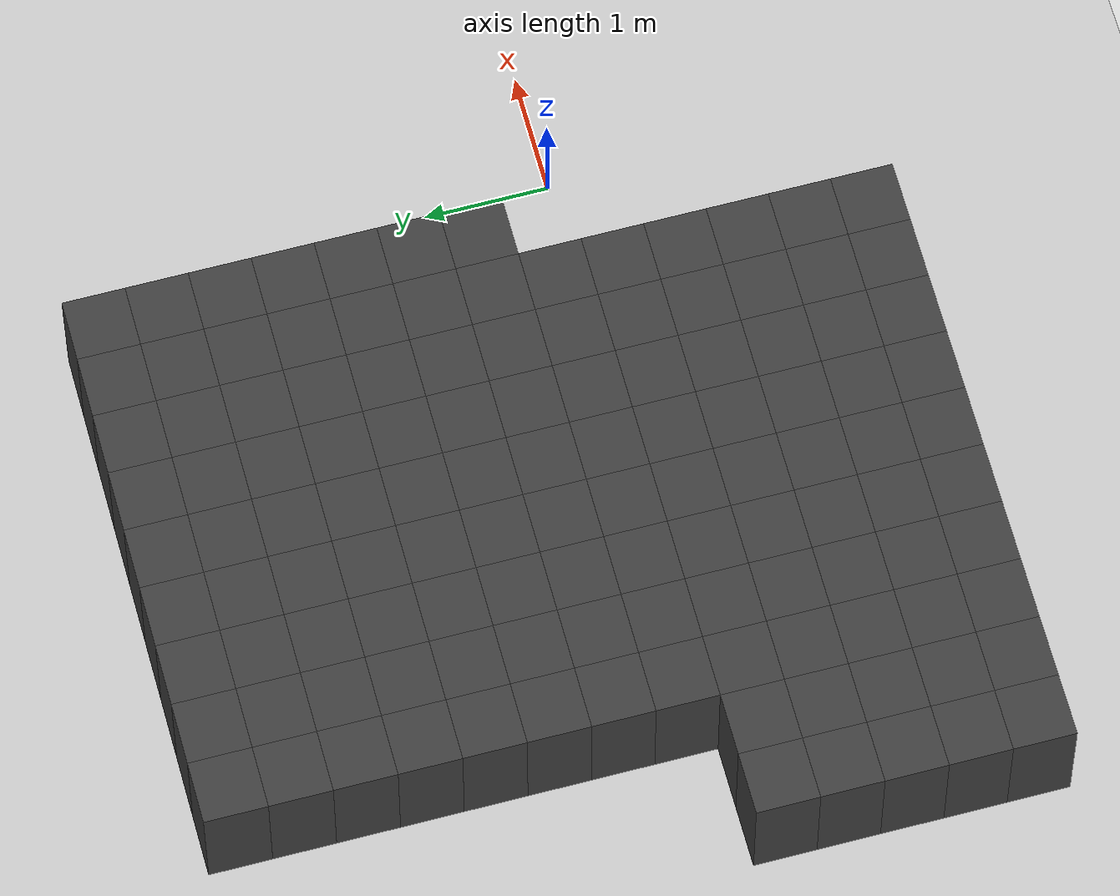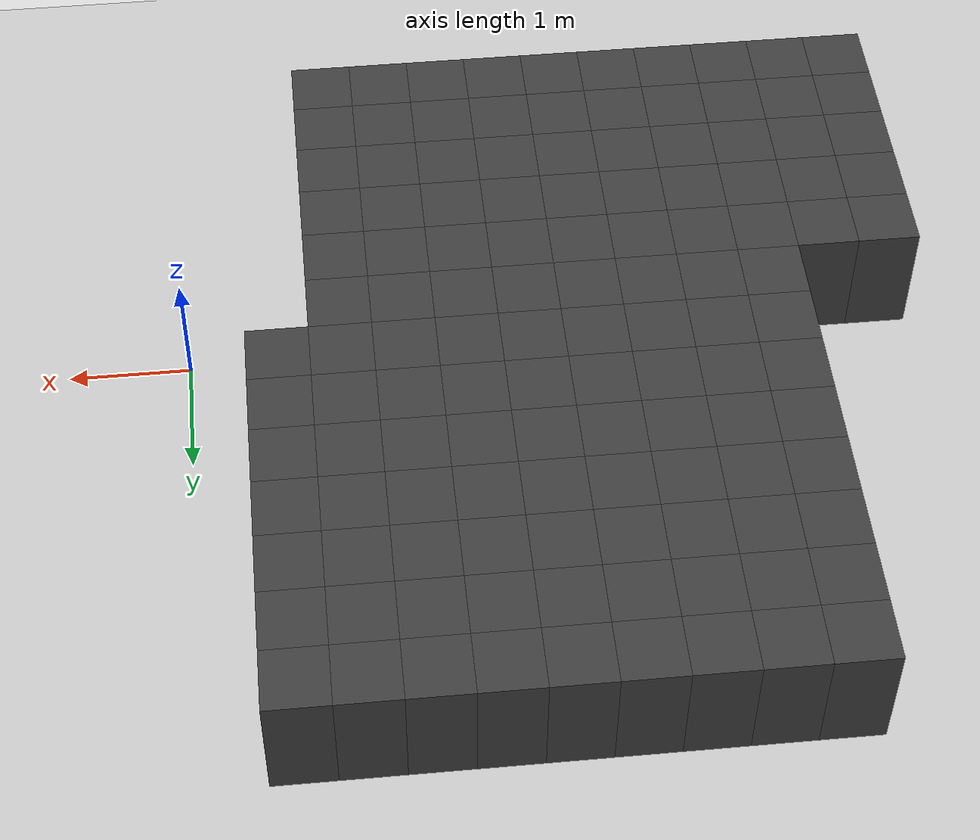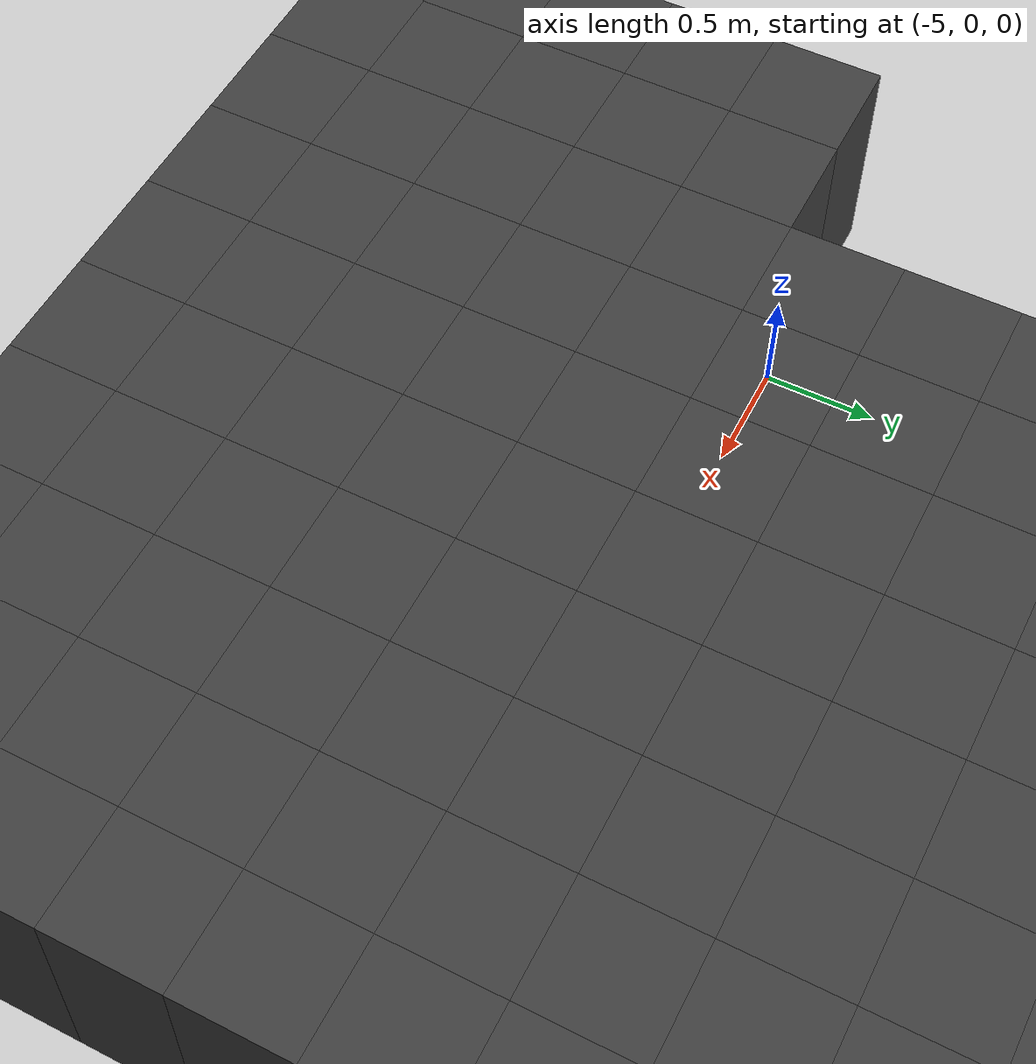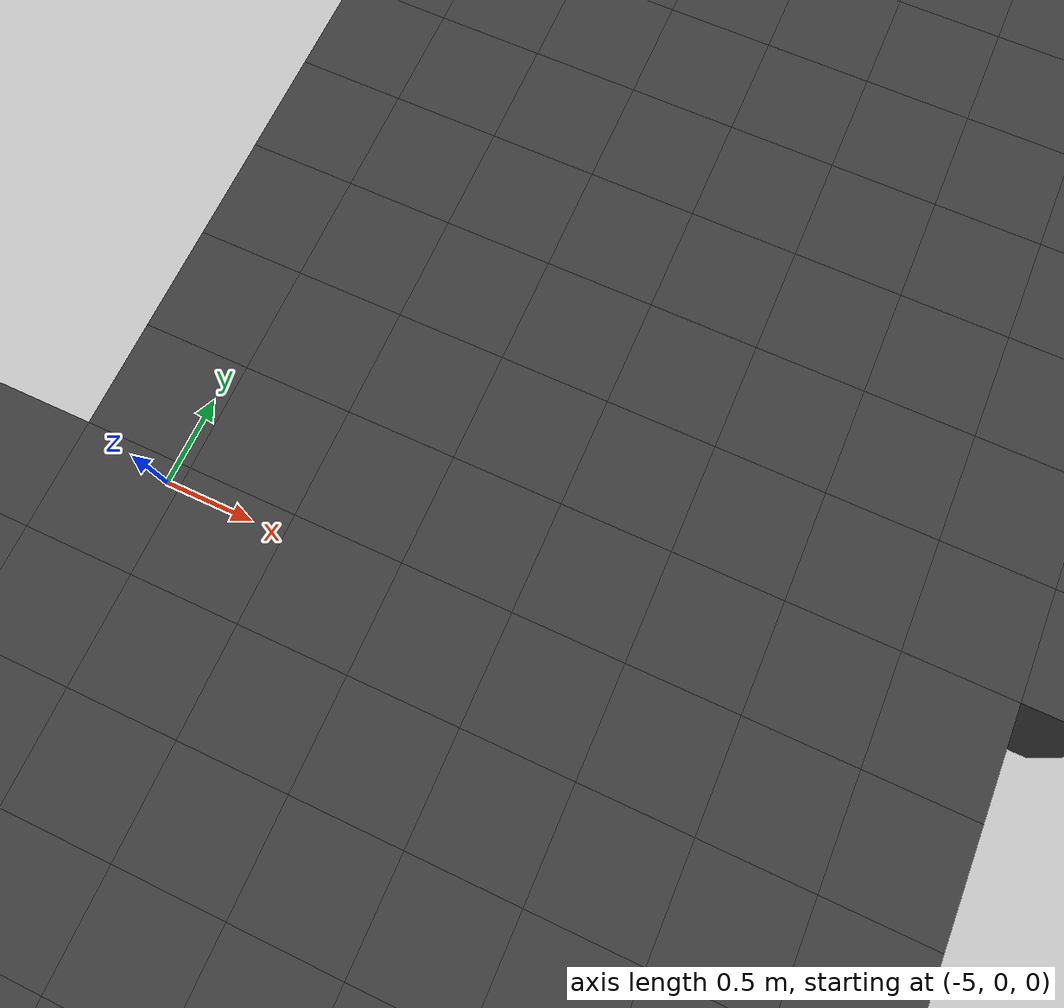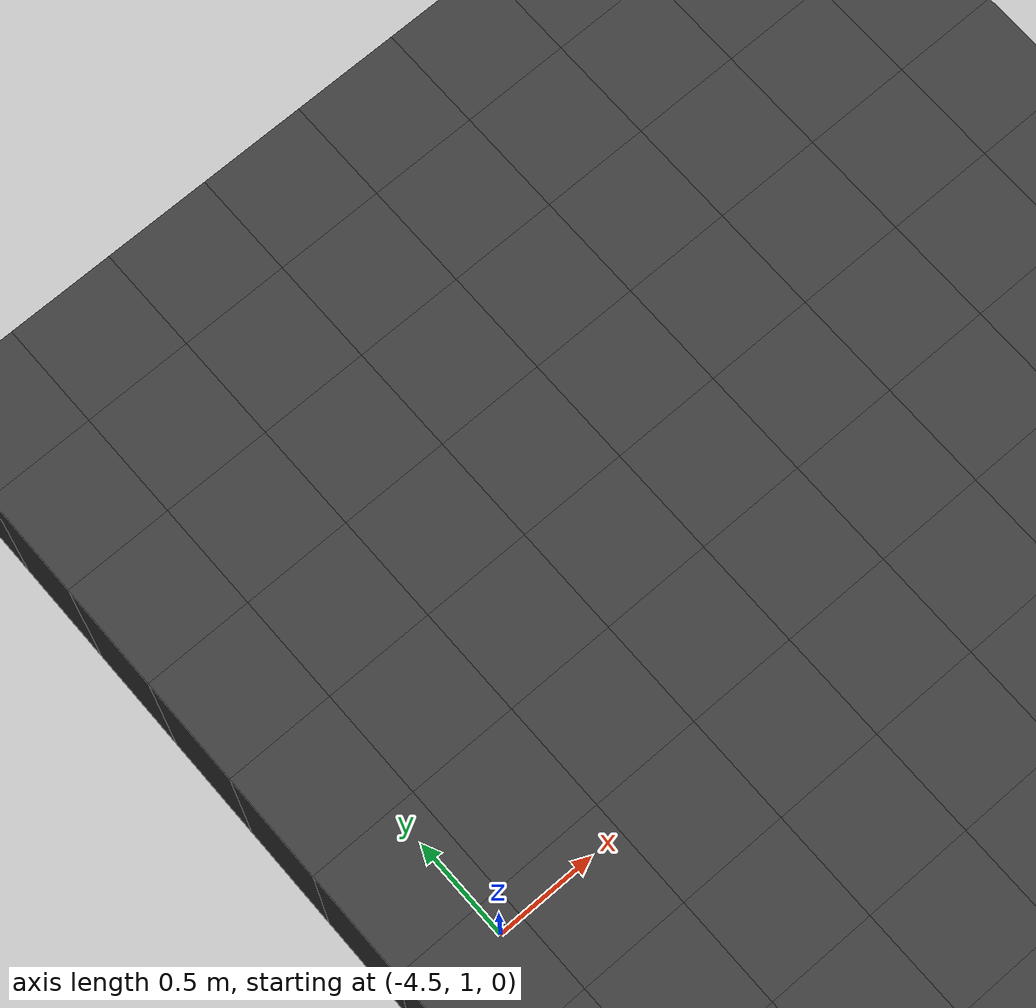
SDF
<sdf version="1.7">
 <world name="map_14706">
  <model name="ground_plane">
   <static>true</static>
   <link name="link">
    <collision name="collision">
     <geometry><plane><normal>0 0 1</normal><size>200 200</size></plane></geometry>
    </collision>
    <visual name="visual">
     <geometry><plane><normal>0 0 1</normal><size>200 200</size></plane></geometry>
     <material><ambient>0.8 0.8 0.8 1</ambient><diffuse>0.8 0.8 0.8 1</diffuse></material>
    </visual>
   </link>
  </model>
  <model name="maze_environment">
   <static>true</static>
   <link name="wall_547">
    <pose>-4.750 3.750 0.500 0 0 0</pose>
    <collision name="col"><geometry><box><size>0.5 0.5 1.0</size></box></geometry></collision>
    <visual name="vis">
     <geometry><box><size>0.5 0.5 1.0</size></box></geometry>
     <material><ambient>0.15 0.15 0.15 1</ambient><diffuse>0.25 0.25 0.25 1</diffuse></material>
    </visual>
   </link>
   <link name="wall_548">
    <pose>-4.250 3.750 0.500 0 0 0</pose>
    <collision name="col"><geometry><box><size>0.5 0.5 1.0</size></box></geometry></collision>
    <visual name="vis">
     <geometry><box><size>0.5 0.5 1.0</size></box></geometry>
     <material><ambient>0.15 0.15 0.15 1</ambient><diffuse>0.25 0.25 0.25 1</diffuse></material>
    </visual>
   </link>
   <link name="wall_549">
    <pose>-3.750 3.750 0.500 0 0 0</pose>
    <collision name="col"><geometry><box><size>0.5 0.5 1.0</size></box></geometry></collision>
    <visual name="vis">
     <geometry><box><size>0.5 0.5 1.0</size></box></geometry>
     <material><ambient>0.15 0.15 0.15 1</ambient><diffuse>0.25 0.25 0.25 1</diffuse></material>
    </visual>
   </link>
   <link name="wall_550">
    <pose>-3.250 3.750 0.500 0 0 0</pose>
    <collision name="col"><geometry><box><size>0.5 0.5 1.0</size></box></geometry></collision>
    <visual name="vis">
     <geometry><box><size>0.5 0.5 1.0</size></box></geometry>
     <material><ambient>0.15 0.15 0.15 1</ambient><diffuse>0.25 0.25 0.25 1</diffuse></material>
    </visual>
   </link>
   <link name="wall_551">
    <pose>-2.750 3.750 0.500 0 0 0</pose>
    <collision name="col"><geometry><box><size>0.5 0.5 1.0</size></box></geometry></collision>
    <visual name="vis">
     <geometry><box><size>0.5 0.5 1.0</size></box></geometry>
     <material><ambient>0.15 0.15 0.15 1</ambient><diffuse>0.25 0.25 0.25 1</diffuse></material>
    </visual>
   </link>
   <link name="wall_552">
    <pose>-2.250 3.750 0.500 0 0 0</pose>
    <collision name="col"><geometry><box><size>0.5 0.5 1.0</size></box></geometry></collision>
    <visual name="vis">
     <geometry><box><size>0.5 0.5 1.0</size></box></geometry>
     <material><ambient>0.15 0.15 0.15 1</ambient><diffuse>0.25 0.25 0.25 1</diffuse></material>
    </visual>
   </link>
   <link name="wall_553">
    <pose>-1.750 3.750 0.500 0 0 0</pose>
    <collision name="col"><geometry><box><size>0.5 0.5 1.0</size></box></geometry></collision>
    <visual name="vis">
     <geometry><box><size>0.5 0.5 1.0</size></box></geometry>
     <material><ambient>0.15 0.15 0.15 1</ambient><diffuse>0.25 0.25 0.25 1</diffuse></material>
    </visual>
   </link>
   <link name="wall_554">
    <pose>-1.250 3.750 0.500 0 0 0</pose>
    <collision name="col"><geometry><box><size>0.5 0.5 1.0</size></box></geometry></collision>
    <visual name="vis">
     <geometry><box><size>0.5 0.5 1.0</size></box></geometry>
     <material><ambient>0.15 0.15 0.15 1</ambient><diffuse>0.25 0.25 0.25 1</diffuse></material>
    </visual>
   </link>
   <link name="wall_555">
    <pose>-0.750 3.750 0.500 0 0 0</pose>
    <collision name="col"><geometry><box><size>0.5 0.5 1.0</size></box></geometry></collision>
    <visual name="vis">
     <geometry><box><size>0.5 0.5 1.0</size></box></geometry>
     <material><ambient>0.15 0.15 0.15 1</ambient><diffuse>0.25 0.25 0.25 1</diffuse></material>
    </visual>
   </link>
   <link name="wall_577">
    <pose>-4.750 3.250 0.500 0 0 0</pose>
    <collision name="col"><geometry><box><size>0.5 0.5 1.0</size></box></geometry></collision>
    <visual name="vis">
     <geometry><box><size>0.5 0.5 1.0</size></box></geometry>
     <material><ambient>0.15 0.15 0.15 1</ambient><diffuse>0.25 0.25 0.25 1</diffuse></material>
    </visual>
   </link>
   <link name="wall_578">
    <pose>-4.250 3.250 0.500 0 0 0</pose>
    <collision name="col"><geometry><box><size>0.5 0.5 1.0</size></box></geometry></collision>
    <visual name="vis">
     <geometry><box><size>0.5 0.5 1.0</size></box></geometry>
     <material><ambient>0.15 0.15 0.15 1</ambient><diffuse>0.25 0.25 0.25 1</diffuse></material>
    </visual>
   </link>
   <link name="wall_579">
    <pose>-3.750 3.250 0.500 0 0 0</pose>
    <collision name="col"><geometry><box><size>0.5 0.5 1.0</size></box></geometry></collision>
    <visual name="vis">
     <geometry><box><size>0.5 0.5 1.0</size></box></geometry>
     <material><ambient>0.15 0.15 0.15 1</ambient><diffuse>0.25 0.25 0.25 1</diffuse></material>
    </visual>
   </link>
   <link name="wall_580">
    <pose>-3.250 3.250 0.500 0 0 0</pose>
    <collision name="col"><geometry><box><size>0.5 0.5 1.0</size></box></geometry></collision>
    <visual name="vis">
     <geometry><box><size>0.5 0.5 1.0</size></box></geometry>
     <material><ambient>0.15 0.15 0.15 1</ambient><diffuse>0.25 0.25 0.25 1</diffuse></material>
    </visual>
   </link>
   <link name="wall_581">
    <pose>-2.750 3.250 0.500 0 0 0</pose>
    <collision name="col"><geometry><box><size>0.5 0.5 1.0</size></box></geometry></collision>
    <visual name="vis">
     <geometry><box><size>0.5 0.5 1.0</size></box></geometry>
     <material><ambient>0.15 0.15 0.15 1</ambient><diffuse>0.25 0.25 0.25 1</diffuse></material>
    </visual>
   </link>
   <link name="wall_582">
    <pose>-2.250 3.250 0.500 0 0 0</pose>
    <collision name="col"><geometry><box><size>0.5 0.5 1.0</size></box></geometry></collision>
    <visual name="vis">
     <geometry><box><size>0.5 0.5 1.0</size></box></geometry>
     <material><ambient>0.15 0.15 0.15 1</ambient><diffuse>0.25 0.25 0.25 1</diffuse></material>
    </visual>
   </link>
   <link name="wall_583">
    <pose>-1.750 3.250 0.500 0 0 0</pose>
    <collision name="col"><geometry><box><size>0.5 0.5 1.0</size></box></geometry></collision>
    <visual name="vis">
     <geometry><box><size>0.5 0.5 1.0</size></box></geometry>
     <material><ambient>0.15 0.15 0.15 1</ambient><diffuse>0.25 0.25 0.25 1</diffuse></material>
    </visual>
   </link>
   <link name="wall_584">
    <pose>-1.250 3.250 0.500 0 0 0</pose>
    <collision name="col"><geometry><box><size>0.5 0.5 1.0</size></box></geometry></collision>
    <visual name="vis">
     <geometry><box><size>0.5 0.5 1.0</size></box></geometry>
     <material><ambient>0.15 0.15 0.15 1</ambient><diffuse>0.25 0.25 0.25 1</diffuse></material>
    </visual>
   </link>
   <link name="wall_585">
    <pose>-0.750 3.250 0.500 0 0 0</pose>
    <collision name="col"><geometry><box><size>0.5 0.5 1.0</size></box></geometry></collision>
    <visual name="vis">
     <geometry><box><size>0.5 0.5 1.0</size></box></geometry>
     <material><ambient>0.15 0.15 0.15 1</ambient><diffuse>0.25 0.25 0.25 1</diffuse></material>
    </visual>
   </link>
   <link name="wall_609">
    <pose>-4.750 2.750 0.500 0 0 0</pose>
    <collision name="col"><geometry><box><size>0.5 0.5 1.0</size></box></geometry></collision>
    <visual name="vis">
     <geometry><box><size>0.5 0.5 1.0</size></box></geometry>
     <material><ambient>0.15 0.15 0.15 1</ambient><diffuse>0.25 0.25 0.25 1</diffuse></material>
    </visual>
   </link>
   <link name="wall_610">
    <pose>-4.250 2.750 0.500 0 0 0</pose>
    <collision name="col"><geometry><box><size>0.5 0.5 1.0</size></box></geometry></collision>
    <visual name="vis">
     <geometry><box><size>0.5 0.5 1.0</size></box></geometry>
     <material><ambient>0.15 0.15 0.15 1</ambient><diffuse>0.25 0.25 0.25 1</diffuse></material>
    </visual>
   </link>
   <link name="wall_611">
    <pose>-3.750 2.750 0.500 0 0 0</pose>
    <collision name="col"><geometry><box><size>0.5 0.5 1.0</size></box></geometry></collision>
    <visual name="vis">
     <geometry><box><size>0.5 0.5 1.0</size></box></geometry>
     <material><ambient>0.15 0.15 0.15 1</ambient><diffuse>0.25 0.25 0.25 1</diffuse></material>
    </visual>
   </link>
   <link name="wall_612">
    <pose>-3.250 2.750 0.500 0 0 0</pose>
    <collision name="col"><geometry><box><size>0.5 0.5 1.0</size></box></geometry></collision>
    <visual name="vis">
     <geometry><box><size>0.5 0.5 1.0</size></box></geometry>
     <material><ambient>0.15 0.15 0.15 1</ambient><diffuse>0.25 0.25 0.25 1</diffuse></material>
    </visual>
   </link>
   <link name="wall_613">
    <pose>-2.750 2.750 0.500 0 0 0</pose>
    <collision name="col"><geometry><box><size>0.5 0.5 1.0</size></box></geometry></collision>
    <visual name="vis">
     <geometry><box><size>0.5 0.5 1.0</size></box></geometry>
     <material><ambient>0.15 0.15 0.15 1</ambient><diffuse>0.25 0.25 0.25 1</diffuse></material>
    </visual>
   </link>
   <link name="wall_614">
    <pose>-2.250 2.750 0.500 0 0 0</pose>
    <collision name="col"><geometry><box><size>0.5 0.5 1.0</size></box></geometry></collision>
    <visual name="vis">
     <geometry><box><size>0.5 0.5 1.0</size></box></geometry>
     <material><ambient>0.15 0.15 0.15 1</ambient><diffuse>0.25 0.25 0.25 1</diffuse></material>
    </visual>
   </link>
   <link name="wall_615">
    <pose>-1.750 2.750 0.500 0 0 0</pose>
    <collision name="col"><geometry><box><size>0.5 0.5 1.0</size></box></geometry></collision>
    <visual name="vis">
     <geometry><box><size>0.5 0.5 1.0</size></box></geometry>
     <material><ambient>0.15 0.15 0.15 1</ambient><diffuse>0.25 0.25 0.25 1</diffuse></material>
    </visual>
   </link>
   <link name="wall_616">
    <pose>-1.250 2.750 0.500 0 0 0</pose>
    <collision name="col"><geometry><box><size>0.5 0.5 1.0</size></box></geometry></collision>
    <visual name="vis">
     <geometry><box><size>0.5 0.5 1.0</size></box></geometry>
     <material><ambient>0.15 0.15 0.15 1</ambient><diffuse>0.25 0.25 0.25 1</diffuse></material>
    </visual>
   </link>
   <link name="wall_617">
    <pose>-0.750 2.750 0.500 0 0 0</pose>
    <collision name="col"><geometry><box><size>0.5 0.5 1.0</size></box></geometry></collision>
    <visual name="vis">
     <geometry><box><size>0.5 0.5 1.0</size></box></geometry>
     <material><ambient>0.15 0.15 0.15 1</ambient><diffuse>0.25 0.25 0.25 1</diffuse></material>
    </visual>
   </link>
   <link name="wall_638">
    <pose>-4.750 2.250 0.500 0 0 0</pose>
    <collision name="col"><geometry><box><size>0.5 0.5 1.0</size></box></geometry></collision>
    <visual name="vis">
     <geometry><box><size>0.5 0.5 1.0</size></box></geometry>
     <material><ambient>0.15 0.15 0.15 1</ambient><diffuse>0.25 0.25 0.25 1</diffuse></material>
    </visual>
   </link>
   <link name="wall_639">
    <pose>-4.250 2.250 0.500 0 0 0</pose>
    <collision name="col"><geometry><box><size>0.5 0.5 1.0</size></box></geometry></collision>
    <visual name="vis">
     <geometry><box><size>0.5 0.5 1.0</size></box></geometry>
     <material><ambient>0.15 0.15 0.15 1</ambient><diffuse>0.25 0.25 0.25 1</diffuse></material>
    </visual>
   </link>
   <link name="wall_640">
    <pose>-3.750 2.250 0.500 0 0 0</pose>
    <collision name="col"><geometry><box><size>0.5 0.5 1.0</size></box></geometry></collision>
    <visual name="vis">
     <geometry><box><size>0.5 0.5 1.0</size></box></geometry>
     <material><ambient>0.15 0.15 0.15 1</ambient><diffuse>0.25 0.25 0.25 1</diffuse></material>
    </visual>
   </link>
   <link name="wall_641">
    <pose>-3.250 2.250 0.500 0 0 0</pose>
    <collision name="col"><geometry><box><size>0.5 0.5 1.0</size></box></geometry></collision>
    <visual name="vis">
     <geometry><box><size>0.5 0.5 1.0</size></box></geometry>
     <material><ambient>0.15 0.15 0.15 1</ambient><diffuse>0.25 0.25 0.25 1</diffuse></material>
    </visual>
   </link>
   <link name="wall_642">
    <pose>-2.750 2.250 0.500 0 0 0</pose>
    <collision name="col"><geometry><box><size>0.5 0.5 1.0</size></box></geometry></collision>
    <visual name="vis">
     <geometry><box><size>0.5 0.5 1.0</size></box></geometry>
     <material><ambient>0.15 0.15 0.15 1</ambient><diffuse>0.25 0.25 0.25 1</diffuse></material>
    </visual>
   </link>
   <link name="wall_643">
    <pose>-2.250 2.250 0.500 0 0 0</pose>
    <collision name="col"><geometry><box><size>0.5 0.5 1.0</size></box></geometry></collision>
    <visual name="vis">
     <geometry><box><size>0.5 0.5 1.0</size></box></geometry>
     <material><ambient>0.15 0.15 0.15 1</ambient><diffuse>0.25 0.25 0.25 1</diffuse></material>
    </visual>
   </link>
   <link name="wall_644">
    <pose>-1.750 2.250 0.500 0 0 0</pose>
    <collision name="col"><geometry><box><size>0.5 0.5 1.0</size></box></geometry></collision>
    <visual name="vis">
     <geometry><box><size>0.5 0.5 1.0</size></box></geometry>
     <material><ambient>0.15 0.15 0.15 1</ambient><diffuse>0.25 0.25 0.25 1</diffuse></material>
    </visual>
   </link>
   <link name="wall_645">
    <pose>-1.250 2.250 0.500 0 0 0</pose>
    <collision name="col"><geometry><box><size>0.5 0.5 1.0</size></box></geometry></collision>
    <visual name="vis">
     <geometry><box><size>0.5 0.5 1.0</size></box></geometry>
     <material><ambient>0.15 0.15 0.15 1</ambient><diffuse>0.25 0.25 0.25 1</diffuse></material>
    </visual>
   </link>
   <link name="wall_646">
    <pose>-0.750 2.250 0.500 0 0 0</pose>
    <collision name="col"><geometry><box><size>0.5 0.5 1.0</size></box></geometry></collision>
    <visual name="vis">
     <geometry><box><size>0.5 0.5 1.0</size></box></geometry>
     <material><ambient>0.15 0.15 0.15 1</ambient><diffuse>0.25 0.25 0.25 1</diffuse></material>
    </visual>
   </link>
   <link name="wall_669">
    <pose>-4.750 1.750 0.500 0 0 0</pose>
    <collision name="col"><geometry><box><size>0.5 0.5 1.0</size></box></geometry></collision>
    <visual name="vis">
     <geometry><box><size>0.5 0.5 1.0</size></box></geometry>
     <material><ambient>0.15 0.15 0.15 1</ambient><diffuse>0.25 0.25 0.25 1</diffuse></material>
    </visual>
   </link>
   <link name="wall_670">
    <pose>-4.250 1.750 0.500 0 0 0</pose>
    <collision name="col"><geometry><box><size>0.5 0.5 1.0</size></box></geometry></collision>
    <visual name="vis">
     <geometry><box><size>0.5 0.5 1.0</size></box></geometry>
     <material><ambient>0.15 0.15 0.15 1</ambient><diffuse>0.25 0.25 0.25 1</diffuse></material>
    </visual>
   </link>
   <link name="wall_671">
    <pose>-3.750 1.750 0.500 0 0 0</pose>
    <collision name="col"><geometry><box><size>0.5 0.5 1.0</size></box></geometry></collision>
    <visual name="vis">
     <geometry><box><size>0.5 0.5 1.0</size></box></geometry>
     <material><ambient>0.15 0.15 0.15 1</ambient><diffuse>0.25 0.25 0.25 1</diffuse></material>
    </visual>
   </link>
   <link name="wall_672">
    <pose>-3.250 1.750 0.500 0 0 0</pose>
    <collision name="col"><geometry><box><size>0.5 0.5 1.0</size></box></geometry></collision>
    <visual name="vis">
     <geometry><box><size>0.5 0.5 1.0</size></box></geometry>
     <material><ambient>0.15 0.15 0.15 1</ambient><diffuse>0.25 0.25 0.25 1</diffuse></material>
    </visual>
   </link>
   <link name="wall_673">
    <pose>-2.750 1.750 0.500 0 0 0</pose>
    <collision name="col"><geometry><box><size>0.5 0.5 1.0</size></box></geometry></collision>
    <visual name="vis">
     <geometry><box><size>0.5 0.5 1.0</size></box></geometry>
     <material><ambient>0.15 0.15 0.15 1</ambient><diffuse>0.25 0.25 0.25 1</diffuse></material>
    </visual>
   </link>
   <link name="wall_674">
    <pose>-2.250 1.750 0.500 0 0 0</pose>
    <collision name="col"><geometry><box><size>0.5 0.5 1.0</size></box></geometry></collision>
    <visual name="vis">
     <geometry><box><size>0.5 0.5 1.0</size></box></geometry>
     <material><ambient>0.15 0.15 0.15 1</ambient><diffuse>0.25 0.25 0.25 1</diffuse></material>
    </visual>
   </link>
   <link name="wall_675">
    <pose>-1.750 1.750 0.500 0 0 0</pose>
    <collision name="col"><geometry><box><size>0.5 0.5 1.0</size></box></geometry></collision>
    <visual name="vis">
     <geometry><box><size>0.5 0.5 1.0</size></box></geometry>
     <material><ambient>0.15 0.15 0.15 1</ambient><diffuse>0.25 0.25 0.25 1</diffuse></material>
    </visual>
   </link>
   <link name="wall_676">
    <pose>-1.250 1.750 0.500 0 0 0</pose>
    <collision name="col"><geometry><box><size>0.5 0.5 1.0</size></box></geometry></collision>
    <visual name="vis">
     <geometry><box><size>0.5 0.5 1.0</size></box></geometry>
     <material><ambient>0.15 0.15 0.15 1</ambient><diffuse>0.25 0.25 0.25 1</diffuse></material>
    </visual>
   </link>
   <link name="wall_677">
    <pose>-0.750 1.750 0.500 0 0 0</pose>
    <collision name="col"><geometry><box><size>0.5 0.5 1.0</size></box></geometry></collision>
    <visual name="vis">
     <geometry><box><size>0.5 0.5 1.0</size></box></geometry>
     <material><ambient>0.15 0.15 0.15 1</ambient><diffuse>0.25 0.25 0.25 1</diffuse></material>
    </visual>
   </link>
   <link name="wall_705">
    <pose>-4.750 1.250 0.500 0 0 0</pose>
    <collision name="col"><geometry><box><size>0.5 0.5 1.0</size></box></geometry></collision>
    <visual name="vis">
     <geometry><box><size>0.5 0.5 1.0</size></box></geometry>
     <material><ambient>0.15 0.15 0.15 1</ambient><diffuse>0.25 0.25 0.25 1</diffuse></material>
    </visual>
   </link>
   <link name="wall_706">
    <pose>-4.250 1.250 0.500 0 0 0</pose>
    <collision name="col"><geometry><box><size>0.5 0.5 1.0</size></box></geometry></collision>
    <visual name="vis">
     <geometry><box><size>0.5 0.5 1.0</size></box></geometry>
     <material><ambient>0.15 0.15 0.15 1</ambient><diffuse>0.25 0.25 0.25 1</diffuse></material>
    </visual>
   </link>
   <link name="wall_707">
    <pose>-3.750 1.250 0.500 0 0 0</pose>
    <collision name="col"><geometry><box><size>0.5 0.5 1.0</size></box></geometry></collision>
    <visual name="vis">
     <geometry><box><size>0.5 0.5 1.0</size></box></geometry>
     <material><ambient>0.15 0.15 0.15 1</ambient><diffuse>0.25 0.25 0.25 1</diffuse></material>
    </visual>
   </link>
   <link name="wall_708">
    <pose>-3.250 1.250 0.500 0 0 0</pose>
    <collision name="col"><geometry><box><size>0.5 0.5 1.0</size></box></geometry></collision>
    <visual name="vis">
     <geometry><box><size>0.5 0.5 1.0</size></box></geometry>
     <material><ambient>0.15 0.15 0.15 1</ambient><diffuse>0.25 0.25 0.25 1</diffuse></material>
    </visual>
   </link>
   <link name="wall_709">
    <pose>-2.750 1.250 0.500 0 0 0</pose>
    <collision name="col"><geometry><box><size>0.5 0.5 1.0</size></box></geometry></collision>
    <visual name="vis">
     <geometry><box><size>0.5 0.5 1.0</size></box></geometry>
     <material><ambient>0.15 0.15 0.15 1</ambient><diffuse>0.25 0.25 0.25 1</diffuse></material>
    </visual>
   </link>
   <link name="wall_710">
    <pose>-2.250 1.250 0.500 0 0 0</pose>
    <collision name="col"><geometry><box><size>0.5 0.5 1.0</size></box></geometry></collision>
    <visual name="vis">
     <geometry><box><size>0.5 0.5 1.0</size></box></geometry>
     <material><ambient>0.15 0.15 0.15 1</ambient><diffuse>0.25 0.25 0.25 1</diffuse></material>
    </visual>
   </link>
   <link name="wall_711">
    <pose>-1.750 1.250 0.500 0 0 0</pose>
    <collision name="col"><geometry><box><size>0.5 0.5 1.0</size></box></geometry></collision>
    <visual name="vis">
     <geometry><box><size>0.5 0.5 1.0</size></box></geometry>
     <material><ambient>0.15 0.15 0.15 1</ambient><diffuse>0.25 0.25 0.25 1</diffuse></material>
    </visual>
   </link>
   <link name="wall_712">
    <pose>-1.250 1.250 0.500 0 0 0</pose>
    <collision name="col"><geometry><box><size>0.5 0.5 1.0</size></box></geometry></collision>
    <visual name="vis">
     <geometry><box><size>0.5 0.5 1.0</size></box></geometry>
     <material><ambient>0.15 0.15 0.15 1</ambient><diffuse>0.25 0.25 0.25 1</diffuse></material>
    </visual>
   </link>
   <link name="wall_713">
    <pose>-0.750 1.250 0.500 0 0 0</pose>
    <collision name="col"><geometry><box><size>0.5 0.5 1.0</size></box></geometry></collision>
    <visual name="vis">
     <geometry><box><size>0.5 0.5 1.0</size></box></geometry>
     <material><ambient>0.15 0.15 0.15 1</ambient><diffuse>0.25 0.25 0.25 1</diffuse></material>
    </visual>
   </link>
   <link name="wall_746">
    <pose>-4.750 0.750 0.500 0 0 0</pose>
    <collision name="col"><geometry><box><size>0.5 0.5 1.0</size></box></geometry></collision>
    <visual name="vis">
     <geometry><box><size>0.5 0.5 1.0</size></box></geometry>
     <material><ambient>0.15 0.15 0.15 1</ambient><diffuse>0.25 0.25 0.25 1</diffuse></material>
    </visual>
   </link>
   <link name="wall_747">
    <pose>-4.250 0.750 0.500 0 0 0</pose>
    <collision name="col"><geometry><box><size>0.5 0.5 1.0</size></box></geometry></collision>
    <visual name="vis">
     <geometry><box><size>0.5 0.5 1.0</size></box></geometry>
     <material><ambient>0.15 0.15 0.15 1</ambient><diffuse>0.25 0.25 0.25 1</diffuse></material>
    </visual>
   </link>
   <link name="wall_748">
    <pose>-3.750 0.750 0.500 0 0 0</pose>
    <collision name="col"><geometry><box><size>0.5 0.5 1.0</size></box></geometry></collision>
    <visual name="vis">
     <geometry><box><size>0.5 0.5 1.0</size></box></geometry>
     <material><ambient>0.15 0.15 0.15 1</ambient><diffuse>0.25 0.25 0.25 1</diffuse></material>
    </visual>
   </link>
   <link name="wall_749">
    <pose>-3.250 0.750 0.500 0 0 0</pose>
    <collision name="col"><geometry><box><size>0.5 0.5 1.0</size></box></geometry></collision>
    <visual name="vis">
     <geometry><box><size>0.5 0.5 1.0</size></box></geometry>
     <material><ambient>0.15 0.15 0.15 1</ambient><diffuse>0.25 0.25 0.25 1</diffuse></material>
    </visual>
   </link>
   <link name="wall_750">
    <pose>-2.750 0.750 0.500 0 0 0</pose>
    <collision name="col"><geometry><box><size>0.5 0.5 1.0</size></box></geometry></collision>
    <visual name="vis">
     <geometry><box><size>0.5 0.5 1.0</size></box></geometry>
     <material><ambient>0.15 0.15 0.15 1</ambient><diffuse>0.25 0.25 0.25 1</diffuse></material>
    </visual>
   </link>
   <link name="wall_751">
    <pose>-2.250 0.750 0.500 0 0 0</pose>
    <collision name="col"><geometry><box><size>0.5 0.5 1.0</size></box></geometry></collision>
    <visual name="vis">
     <geometry><box><size>0.5 0.5 1.0</size></box></geometry>
     <material><ambient>0.15 0.15 0.15 1</ambient><diffuse>0.25 0.25 0.25 1</diffuse></material>
    </visual>
   </link>
   <link name="wall_752">
    <pose>-1.750 0.750 0.500 0 0 0</pose>
    <collision name="col"><geometry><box><size>0.5 0.5 1.0</size></box></geometry></collision>
    <visual name="vis">
     <geometry><box><size>0.5 0.5 1.0</size></box></geometry>
     <material><ambient>0.15 0.15 0.15 1</ambient><diffuse>0.25 0.25 0.25 1</diffuse></material>
    </visual>
   </link>
   <link name="wall_753">
    <pose>-1.250 0.750 0.500 0 0 0</pose>
    <collision name="col"><geometry><box><size>0.5 0.5 1.0</size></box></geometry></collision>
    <visual name="vis">
     <geometry><box><size>0.5 0.5 1.0</size></box></geometry>
     <material><ambient>0.15 0.15 0.15 1</ambient><diffuse>0.25 0.25 0.25 1</diffuse></material>
    </visual>
   </link>
   <link name="wall_754">
    <pose>-0.750 0.750 0.500 0 0 0</pose>
    <collision name="col"><geometry><box><size>0.5 0.5 1.0</size></box></geometry></collision>
    <visual name="vis">
     <geometry><box><size>0.5 0.5 1.0</size></box></geometry>
     <material><ambient>0.15 0.15 0.15 1</ambient><diffuse>0.25 0.25 0.25 1</diffuse></material>
    </visual>
   </link>
   <link name="wall_787">
    <pose>-4.750 0.250 0.500 0 0 0</pose>
    <collision name="col"><geometry><box><size>0.5 0.5 1.0</size></box></geometry></collision>
    <visual name="vis">
     <geometry><box><size>0.5 0.5 1.0</size></box></geometry>
     <material><ambient>0.15 0.15 0.15 1</ambient><diffuse>0.25 0.25 0.25 1</diffuse></material>
    </visual>
   </link>
   <link name="wall_788">
    <pose>-4.250 0.250 0.500 0 0 0</pose>
    <collision name="col"><geometry><box><size>0.5 0.5 1.0</size></box></geometry></collision>
    <visual name="vis">
     <geometry><box><size>0.5 0.5 1.0</size></box></geometry>
     <material><ambient>0.15 0.15 0.15 1</ambient><diffuse>0.25 0.25 0.25 1</diffuse></material>
    </visual>
   </link>
   <link name="wall_789">
    <pose>-3.750 0.250 0.500 0 0 0</pose>
    <collision name="col"><geometry><box><size>0.5 0.5 1.0</size></box></geometry></collision>
    <visual name="vis">
     <geometry><box><size>0.5 0.5 1.0</size></box></geometry>
     <material><ambient>0.15 0.15 0.15 1</ambient><diffuse>0.25 0.25 0.25 1</diffuse></material>
    </visual>
   </link>
   <link name="wall_790">
    <pose>-3.250 0.250 0.500 0 0 0</pose>
    <collision name="col"><geometry><box><size>0.5 0.5 1.0</size></box></geometry></collision>
    <visual name="vis">
     <geometry><box><size>0.5 0.5 1.0</size></box></geometry>
     <material><ambient>0.15 0.15 0.15 1</ambient><diffuse>0.25 0.25 0.25 1</diffuse></material>
    </visual>
   </link>
   <link name="wall_791">
    <pose>-2.750 0.250 0.500 0 0 0</pose>
    <collision name="col"><geometry><box><size>0.5 0.5 1.0</size></box></geometry></collision>
    <visual name="vis">
     <geometry><box><size>0.5 0.5 1.0</size></box></geometry>
     <material><ambient>0.15 0.15 0.15 1</ambient><diffuse>0.25 0.25 0.25 1</diffuse></material>
    </visual>
   </link>
   <link name="wall_792">
    <pose>-2.250 0.250 0.500 0 0 0</pose>
    <collision name="col"><geometry><box><size>0.5 0.5 1.0</size></box></geometry></collision>
    <visual name="vis">
     <geometry><box><size>0.5 0.5 1.0</size></box></geometry>
     <material><ambient>0.15 0.15 0.15 1</ambient><diffuse>0.25 0.25 0.25 1</diffuse></material>
    </visual>
   </link>
   <link name="wall_793">
    <pose>-1.750 0.250 0.500 0 0 0</pose>
    <collision name="col"><geometry><box><size>0.5 0.5 1.0</size></box></geometry></collision>
    <visual name="vis">
     <geometry><box><size>0.5 0.5 1.0</size></box></geometry>
     <material><ambient>0.15 0.15 0.15 1</ambient><diffuse>0.25 0.25 0.25 1</diffuse></material>
    </visual>
   </link>
   <link name="wall_794">
    <pose>-1.250 0.250 0.500 0 0 0</pose>
    <collision name="col"><geometry><box><size>0.5 0.5 1.0</size></box></geometry></collision>
    <visual name="vis">
     <geometry><box><size>0.5 0.5 1.0</size></box></geometry>
     <material><ambient>0.15 0.15 0.15 1</ambient><diffuse>0.25 0.25 0.25 1</diffuse></material>
    </visual>
   </link>
   <link name="wall_827">
    <pose>-5.750 -0.250 0.500 0 0 0</pose>
    <collision name="col"><geometry><box><size>0.5 0.5 1.0</size></box></geometry></collision>
    <visual name="vis">
     <geometry><box><size>0.5 0.5 1.0</size></box></geometry>
     <material><ambient>0.15 0.15 0.15 1</ambient><diffuse>0.25 0.25 0.25 1</diffuse></material>
    </visual>
   </link>
   <link name="wall_828">
    <pose>-5.250 -0.250 0.500 0 0 0</pose>
    <collision name="col"><geometry><box><size>0.5 0.5 1.0</size></box></geometry></collision>
    <visual name="vis">
     <geometry><box><size>0.5 0.5 1.0</size></box></geometry>
     <material><ambient>0.15 0.15 0.15 1</ambient><diffuse>0.25 0.25 0.25 1</diffuse></material>
    </visual>
   </link>
   <link name="wall_829">
    <pose>-4.750 -0.250 0.500 0 0 0</pose>
    <collision name="col"><geometry><box><size>0.5 0.5 1.0</size></box></geometry></collision>
    <visual name="vis">
     <geometry><box><size>0.5 0.5 1.0</size></box></geometry>
     <material><ambient>0.15 0.15 0.15 1</ambient><diffuse>0.25 0.25 0.25 1</diffuse></material>
    </visual>
   </link>
   <link name="wall_830">
    <pose>-4.250 -0.250 0.500 0 0 0</pose>
    <collision name="col"><geometry><box><size>0.5 0.5 1.0</size></box></geometry></collision>
    <visual name="vis">
     <geometry><box><size>0.5 0.5 1.0</size></box></geometry>
     <material><ambient>0.15 0.15 0.15 1</ambient><diffuse>0.25 0.25 0.25 1</diffuse></material>
    </visual>
   </link>
   <link name="wall_831">
    <pose>-3.750 -0.250 0.500 0 0 0</pose>
    <collision name="col"><geometry><box><size>0.5 0.5 1.0</size></box></geometry></collision>
    <visual name="vis">
     <geometry><box><size>0.5 0.5 1.0</size></box></geometry>
     <material><ambient>0.15 0.15 0.15 1</ambient><diffuse>0.25 0.25 0.25 1</diffuse></material>
    </visual>
   </link>
   <link name="wall_832">
    <pose>-3.250 -0.250 0.500 0 0 0</pose>
    <collision name="col"><geometry><box><size>0.5 0.5 1.0</size></box></geometry></collision>
    <visual name="vis">
     <geometry><box><size>0.5 0.5 1.0</size></box></geometry>
     <material><ambient>0.15 0.15 0.15 1</ambient><diffuse>0.25 0.25 0.25 1</diffuse></material>
    </visual>
   </link>
   <link name="wall_833">
    <pose>-2.750 -0.250 0.500 0 0 0</pose>
    <collision name="col"><geometry><box><size>0.5 0.5 1.0</size></box></geometry></collision>
    <visual name="vis">
     <geometry><box><size>0.5 0.5 1.0</size></box></geometry>
     <material><ambient>0.15 0.15 0.15 1</ambient><diffuse>0.25 0.25 0.25 1</diffuse></material>
    </visual>
   </link>
   <link name="wall_834">
    <pose>-2.250 -0.250 0.500 0 0 0</pose>
    <collision name="col"><geometry><box><size>0.5 0.5 1.0</size></box></geometry></collision>
    <visual name="vis">
     <geometry><box><size>0.5 0.5 1.0</size></box></geometry>
     <material><ambient>0.15 0.15 0.15 1</ambient><diffuse>0.25 0.25 0.25 1</diffuse></material>
    </visual>
   </link>
   <link name="wall_835">
    <pose>-1.750 -0.250 0.500 0 0 0</pose>
    <collision name="col"><geometry><box><size>0.5 0.5 1.0</size></box></geometry></collision>
    <visual name="vis">
     <geometry><box><size>0.5 0.5 1.0</size></box></geometry>
     <material><ambient>0.15 0.15 0.15 1</ambient><diffuse>0.25 0.25 0.25 1</diffuse></material>
    </visual>
   </link>
   <link name="wall_836">
    <pose>-1.250 -0.250 0.500 0 0 0</pose>
    <collision name="col"><geometry><box><size>0.5 0.5 1.0</size></box></geometry></collision>
    <visual name="vis">
     <geometry><box><size>0.5 0.5 1.0</size></box></geometry>
     <material><ambient>0.15 0.15 0.15 1</ambient><diffuse>0.25 0.25 0.25 1</diffuse></material>
    </visual>
   </link>
   <link name="wall_869">
    <pose>-5.750 -0.750 0.500 0 0 0</pose>
    <collision name="col"><geometry><box><size>0.5 0.5 1.0</size></box></geometry></collision>
    <visual name="vis">
     <geometry><box><size>0.5 0.5 1.0</size></box></geometry>
     <material><ambient>0.15 0.15 0.15 1</ambient><diffuse>0.25 0.25 0.25 1</diffuse></material>
    </visual>
   </link>
   <link name="wall_870">
    <pose>-5.250 -0.750 0.500 0 0 0</pose>
    <collision name="col"><geometry><box><size>0.5 0.5 1.0</size></box></geometry></collision>
    <visual name="vis">
     <geometry><box><size>0.5 0.5 1.0</size></box></geometry>
     <material><ambient>0.15 0.15 0.15 1</ambient><diffuse>0.25 0.25 0.25 1</diffuse></material>
    </visual>
   </link>
   <link name="wall_871">
    <pose>-4.750 -0.750 0.500 0 0 0</pose>
    <collision name="col"><geometry><box><size>0.5 0.5 1.0</size></box></geometry></collision>
    <visual name="vis">
     <geometry><box><size>0.5 0.5 1.0</size></box></geometry>
     <material><ambient>0.15 0.15 0.15 1</ambient><diffuse>0.25 0.25 0.25 1</diffuse></material>
    </visual>
   </link>
   <link name="wall_872">
    <pose>-4.250 -0.750 0.500 0 0 0</pose>
    <collision name="col"><geometry><box><size>0.5 0.5 1.0</size></box></geometry></collision>
    <visual name="vis">
     <geometry><box><size>0.5 0.5 1.0</size></box></geometry>
     <material><ambient>0.15 0.15 0.15 1</ambient><diffuse>0.25 0.25 0.25 1</diffuse></material>
    </visual>
   </link>
   <link name="wall_873">
    <pose>-3.750 -0.750 0.500 0 0 0</pose>
    <collision name="col"><geometry><box><size>0.5 0.5 1.0</size></box></geometry></collision>
    <visual name="vis">
     <geometry><box><size>0.5 0.5 1.0</size></box></geometry>
     <material><ambient>0.15 0.15 0.15 1</ambient><diffuse>0.25 0.25 0.25 1</diffuse></material>
    </visual>
   </link>
   <link name="wall_874">
    <pose>-3.250 -0.750 0.500 0 0 0</pose>
    <collision name="col"><geometry><box><size>0.5 0.5 1.0</size></box></geometry></collision>
    <visual name="vis">
     <geometry><box><size>0.5 0.5 1.0</size></box></geometry>
     <material><ambient>0.15 0.15 0.15 1</ambient><diffuse>0.25 0.25 0.25 1</diffuse></material>
    </visual>
   </link>
   <link name="wall_875">
    <pose>-2.750 -0.750 0.500 0 0 0</pose>
    <collision name="col"><geometry><box><size>0.5 0.5 1.0</size></box></geometry></collision>
    <visual name="vis">
     <geometry><box><size>0.5 0.5 1.0</size></box></geometry>
     <material><ambient>0.15 0.15 0.15 1</ambient><diffuse>0.25 0.25 0.25 1</diffuse></material>
    </visual>
   </link>
   <link name="wall_876">
    <pose>-2.250 -0.750 0.500 0 0 0</pose>
    <collision name="col"><geometry><box><size>0.5 0.5 1.0</size></box></geometry></collision>
    <visual name="vis">
     <geometry><box><size>0.5 0.5 1.0</size></box></geometry>
     <material><ambient>0.15 0.15 0.15 1</ambient><diffuse>0.25 0.25 0.25 1</diffuse></material>
    </visual>
   </link>
   <link name="wall_877">
    <pose>-1.750 -0.750 0.500 0 0 0</pose>
    <collision name="col"><geometry><box><size>0.5 0.5 1.0</size></box></geometry></collision>
    <visual name="vis">
     <geometry><box><size>0.5 0.5 1.0</size></box></geometry>
     <material><ambient>0.15 0.15 0.15 1</ambient><diffuse>0.25 0.25 0.25 1</diffuse></material>
    </visual>
   </link>
   <link name="wall_878">
    <pose>-1.250 -0.750 0.500 0 0 0</pose>
    <collision name="col"><geometry><box><size>0.5 0.5 1.0</size></box></geometry></collision>
    <visual name="vis">
     <geometry><box><size>0.5 0.5 1.0</size></box></geometry>
     <material><ambient>0.15 0.15 0.15 1</ambient><diffuse>0.25 0.25 0.25 1</diffuse></material>
    </visual>
   </link>
   <link name="wall_911">
    <pose>-5.750 -1.250 0.500 0 0 0</pose>
    <collision name="col"><geometry><box><size>0.5 0.5 1.0</size></box></geometry></collision>
    <visual name="vis">
     <geometry><box><size>0.5 0.5 1.0</size></box></geometry>
     <material><ambient>0.15 0.15 0.15 1</ambient><diffuse>0.25 0.25 0.25 1</diffuse></material>
    </visual>
   </link>
   <link name="wall_912">
    <pose>-5.250 -1.250 0.500 0 0 0</pose>
    <collision name="col"><geometry><box><size>0.5 0.5 1.0</size></box></geometry></collision>
    <visual name="vis">
     <geometry><box><size>0.5 0.5 1.0</size></box></geometry>
     <material><ambient>0.15 0.15 0.15 1</ambient><diffuse>0.25 0.25 0.25 1</diffuse></material>
    </visual>
   </link>
   <link name="wall_913">
    <pose>-4.750 -1.250 0.500 0 0 0</pose>
    <collision name="col"><geometry><box><size>0.5 0.5 1.0</size></box></geometry></collision>
    <visual name="vis">
     <geometry><box><size>0.5 0.5 1.0</size></box></geometry>
     <material><ambient>0.15 0.15 0.15 1</ambient><diffuse>0.25 0.25 0.25 1</diffuse></material>
    </visual>
   </link>
   <link name="wall_914">
    <pose>-4.250 -1.250 0.500 0 0 0</pose>
    <collision name="col"><geometry><box><size>0.5 0.5 1.0</size></box></geometry></collision>
    <visual name="vis">
     <geometry><box><size>0.5 0.5 1.0</size></box></geometry>
     <material><ambient>0.15 0.15 0.15 1</ambient><diffuse>0.25 0.25 0.25 1</diffuse></material>
    </visual>
   </link>
   <link name="wall_915">
    <pose>-3.750 -1.250 0.500 0 0 0</pose>
    <collision name="col"><geometry><box><size>0.5 0.5 1.0</size></box></geometry></collision>
    <visual name="vis">
     <geometry><box><size>0.5 0.5 1.0</size></box></geometry>
     <material><ambient>0.15 0.15 0.15 1</ambient><diffuse>0.25 0.25 0.25 1</diffuse></material>
    </visual>
   </link>
   <link name="wall_916">
    <pose>-3.250 -1.250 0.500 0 0 0</pose>
    <collision name="col"><geometry><box><size>0.5 0.5 1.0</size></box></geometry></collision>
    <visual name="vis">
     <geometry><box><size>0.5 0.5 1.0</size></box></geometry>
     <material><ambient>0.15 0.15 0.15 1</ambient><diffuse>0.25 0.25 0.25 1</diffuse></material>
    </visual>
   </link>
   <link name="wall_917">
    <pose>-2.750 -1.250 0.500 0 0 0</pose>
    <collision name="col"><geometry><box><size>0.5 0.5 1.0</size></box></geometry></collision>
    <visual name="vis">
     <geometry><box><size>0.5 0.5 1.0</size></box></geometry>
     <material><ambient>0.15 0.15 0.15 1</ambient><diffuse>0.25 0.25 0.25 1</diffuse></material>
    </visual>
   </link>
   <link name="wall_918">
    <pose>-2.250 -1.250 0.500 0 0 0</pose>
    <collision name="col"><geometry><box><size>0.5 0.5 1.0</size></box></geometry></collision>
    <visual name="vis">
     <geometry><box><size>0.5 0.5 1.0</size></box></geometry>
     <material><ambient>0.15 0.15 0.15 1</ambient><diffuse>0.25 0.25 0.25 1</diffuse></material>
    </visual>
   </link>
   <link name="wall_919">
    <pose>-1.750 -1.250 0.500 0 0 0</pose>
    <collision name="col"><geometry><box><size>0.5 0.5 1.0</size></box></geometry></collision>
    <visual name="vis">
     <geometry><box><size>0.5 0.5 1.0</size></box></geometry>
     <material><ambient>0.15 0.15 0.15 1</ambient><diffuse>0.25 0.25 0.25 1</diffuse></material>
    </visual>
   </link>
   <link name="wall_920">
    <pose>-1.250 -1.250 0.500 0 0 0</pose>
    <collision name="col"><geometry><box><size>0.5 0.5 1.0</size></box></geometry></collision>
    <visual name="vis">
     <geometry><box><size>0.5 0.5 1.0</size></box></geometry>
     <material><ambient>0.15 0.15 0.15 1</ambient><diffuse>0.25 0.25 0.25 1</diffuse></material>
    </visual>
   </link>
   <link name="wall_953">
    <pose>-5.750 -1.750 0.500 0 0 0</pose>
    <collision name="col"><geometry><box><size>0.5 0.5 1.0</size></box></geometry></collision>
    <visual name="vis">
     <geometry><box><size>0.5 0.5 1.0</size></box></geometry>
     <material><ambient>0.15 0.15 0.15 1</ambient><diffuse>0.25 0.25 0.25 1</diffuse></material>
    </visual>
   </link>
   <link name="wall_954">
    <pose>-5.250 -1.750 0.500 0 0 0</pose>
    <collision name="col"><geometry><box><size>0.5 0.5 1.0</size></box></geometry></collision>
    <visual name="vis">
     <geometry><box><size>0.5 0.5 1.0</size></box></geometry>
     <material><ambient>0.15 0.15 0.15 1</ambient><diffuse>0.25 0.25 0.25 1</diffuse></material>
    </visual>
   </link>
   <link name="wall_955">
    <pose>-4.750 -1.750 0.500 0 0 0</pose>
    <collision name="col"><geometry><box><size>0.5 0.5 1.0</size></box></geometry></collision>
    <visual name="vis">
     <geometry><box><size>0.5 0.5 1.0</size></box></geometry>
     <material><ambient>0.15 0.15 0.15 1</ambient><diffuse>0.25 0.25 0.25 1</diffuse></material>
    </visual>
   </link>
   <link name="wall_956">
    <pose>-4.250 -1.750 0.500 0 0 0</pose>
    <collision name="col"><geometry><box><size>0.5 0.5 1.0</size></box></geometry></collision>
    <visual name="vis">
     <geometry><box><size>0.5 0.5 1.0</size></box></geometry>
     <material><ambient>0.15 0.15 0.15 1</ambient><diffuse>0.25 0.25 0.25 1</diffuse></material>
    </visual>
   </link>
   <link name="wall_957">
    <pose>-3.750 -1.750 0.500 0 0 0</pose>
    <collision name="col"><geometry><box><size>0.5 0.5 1.0</size></box></geometry></collision>
    <visual name="vis">
     <geometry><box><size>0.5 0.5 1.0</size></box></geometry>
     <material><ambient>0.15 0.15 0.15 1</ambient><diffuse>0.25 0.25 0.25 1</diffuse></material>
    </visual>
   </link>
   <link name="wall_958">
    <pose>-3.250 -1.750 0.500 0 0 0</pose>
    <collision name="col"><geometry><box><size>0.5 0.5 1.0</size></box></geometry></collision>
    <visual name="vis">
     <geometry><box><size>0.5 0.5 1.0</size></box></geometry>
     <material><ambient>0.15 0.15 0.15 1</ambient><diffuse>0.25 0.25 0.25 1</diffuse></material>
    </visual>
   </link>
   <link name="wall_959">
    <pose>-2.750 -1.750 0.500 0 0 0</pose>
    <collision name="col"><geometry><box><size>0.5 0.5 1.0</size></box></geometry></collision>
    <visual name="vis">
     <geometry><box><size>0.5 0.5 1.0</size></box></geometry>
     <material><ambient>0.15 0.15 0.15 1</ambient><diffuse>0.25 0.25 0.25 1</diffuse></material>
    </visual>
   </link>
   <link name="wall_960">
    <pose>-2.250 -1.750 0.500 0 0 0</pose>
    <collision name="col"><geometry><box><size>0.5 0.5 1.0</size></box></geometry></collision>
    <visual name="vis">
     <geometry><box><size>0.5 0.5 1.0</size></box></geometry>
     <material><ambient>0.15 0.15 0.15 1</ambient><diffuse>0.25 0.25 0.25 1</diffuse></material>
    </visual>
   </link>
   <link name="wall_961">
    <pose>-1.750 -1.750 0.500 0 0 0</pose>
    <collision name="col"><geometry><box><size>0.5 0.5 1.0</size></box></geometry></collision>
    <visual name="vis">
     <geometry><box><size>0.5 0.5 1.0</size></box></geometry>
     <material><ambient>0.15 0.15 0.15 1</ambient><diffuse>0.25 0.25 0.25 1</diffuse></material>
    </visual>
   </link>
   <link name="wall_962">
    <pose>-1.250 -1.750 0.500 0 0 0</pose>
    <collision name="col"><geometry><box><size>0.5 0.5 1.0</size></box></geometry></collision>
    <visual name="vis">
     <geometry><box><size>0.5 0.5 1.0</size></box></geometry>
     <material><ambient>0.15 0.15 0.15 1</ambient><diffuse>0.25 0.25 0.25 1</diffuse></material>
    </visual>
   </link>
   <link name="wall_995">
    <pose>-5.750 -2.250 0.500 0 0 0</pose>
    <collision name="col"><geometry><box><size>0.5 0.5 1.0</size></box></geometry></collision>
    <visual name="vis">
     <geometry><box><size>0.5 0.5 1.0</size></box></geometry>
     <material><ambient>0.15 0.15 0.15 1</ambient><diffuse>0.25 0.25 0.25 1</diffuse></material>
    </visual>
   </link>
   <link name="wall_996">
    <pose>-5.250 -2.250 0.500 0 0 0</pose>
    <collision name="col"><geometry><box><size>0.5 0.5 1.0</size></box></geometry></collision>
    <visual name="vis">
     <geometry><box><size>0.5 0.5 1.0</size></box></geometry>
     <material><ambient>0.15 0.15 0.15 1</ambient><diffuse>0.25 0.25 0.25 1</diffuse></material>
    </visual>
   </link>
   <link name="wall_997">
    <pose>-4.750 -2.250 0.500 0 0 0</pose>
    <collision name="col"><geometry><box><size>0.5 0.5 1.0</size></box></geometry></collision>
    <visual name="vis">
     <geometry><box><size>0.5 0.5 1.0</size></box></geometry>
     <material><ambient>0.15 0.15 0.15 1</ambient><diffuse>0.25 0.25 0.25 1</diffuse></material>
    </visual>
   </link>
   <link name="wall_998">
    <pose>-4.250 -2.250 0.500 0 0 0</pose>
    <collision name="col"><geometry><box><size>0.5 0.5 1.0</size></box></geometry></collision>
    <visual name="vis">
     <geometry><box><size>0.5 0.5 1.0</size></box></geometry>
     <material><ambient>0.15 0.15 0.15 1</ambient><diffuse>0.25 0.25 0.25 1</diffuse></material>
    </visual>
   </link>
   <link name="wall_999">
    <pose>-3.750 -2.250 0.500 0 0 0</pose>
    <collision name="col"><geometry><box><size>0.5 0.5 1.0</size></box></geometry></collision>
    <visual name="vis">
     <geometry><box><size>0.5 0.5 1.0</size></box></geometry>
     <material><ambient>0.15 0.15 0.15 1</ambient><diffuse>0.25 0.25 0.25 1</diffuse></material>
    </visual>
   </link>
   <link name="wall_1000">
    <pose>-3.250 -2.250 0.500 0 0 0</pose>
    <collision name="col"><geometry><box><size>0.5 0.5 1.0</size></box></geometry></collision>
    <visual name="vis">
     <geometry><box><size>0.5 0.5 1.0</size></box></geometry>
     <material><ambient>0.15 0.15 0.15 1</ambient><diffuse>0.25 0.25 0.25 1</diffuse></material>
    </visual>
   </link>
   <link name="wall_1001">
    <pose>-2.750 -2.250 0.500 0 0 0</pose>
    <collision name="col"><geometry><box><size>0.5 0.5 1.0</size></box></geometry></collision>
    <visual name="vis">
     <geometry><box><size>0.5 0.5 1.0</size></box></geometry>
     <material><ambient>0.15 0.15 0.15 1</ambient><diffuse>0.25 0.25 0.25 1</diffuse></material>
    </visual>
   </link>
   <link name="wall_1002">
    <pose>-2.250 -2.250 0.500 0 0 0</pose>
    <collision name="col"><geometry><box><size>0.5 0.5 1.0</size></box></geometry></collision>
    <visual name="vis">
     <geometry><box><size>0.5 0.5 1.0</size></box></geometry>
     <material><ambient>0.15 0.15 0.15 1</ambient><diffuse>0.25 0.25 0.25 1</diffuse></material>
    </visual>
   </link>
   <link name="wall_1003">
    <pose>-1.750 -2.250 0.500 0 0 0</pose>
    <collision name="col"><geometry><box><size>0.5 0.5 1.0</size></box></geometry></collision>
    <visual name="vis">
     <geometry><box><size>0.5 0.5 1.0</size></box></geometry>
     <material><ambient>0.15 0.15 0.15 1</ambient><diffuse>0.25 0.25 0.25 1</diffuse></material>
    </visual>
   </link>
   <link name="wall_1004">
    <pose>-1.250 -2.250 0.500 0 0 0</pose>
    <collision name="col"><geometry><box><size>0.5 0.5 1.0</size></box></geometry></collision>
    <visual name="vis">
     <geometry><box><size>0.5 0.5 1.0</size></box></geometry>
     <material><ambient>0.15 0.15 0.15 1</ambient><diffuse>0.25 0.25 0.25 1</diffuse></material>
    </visual>
   </link>
  </model>
 </world>
</sdf>
